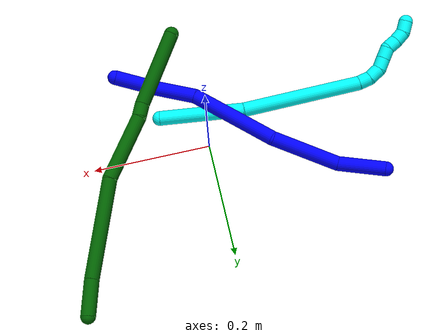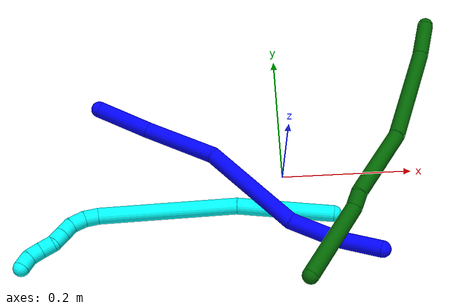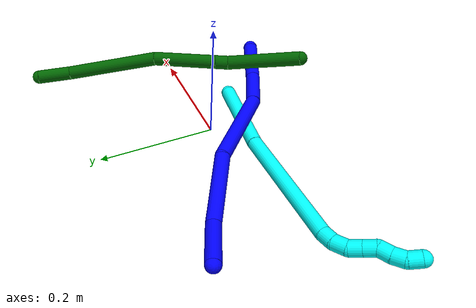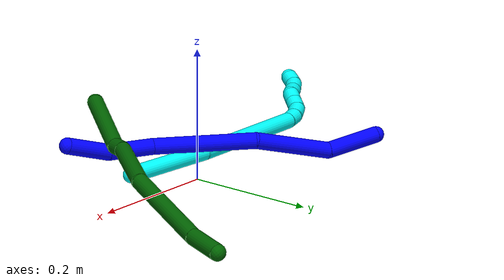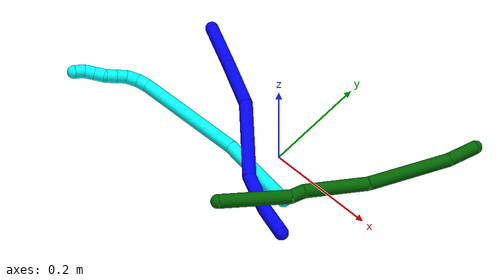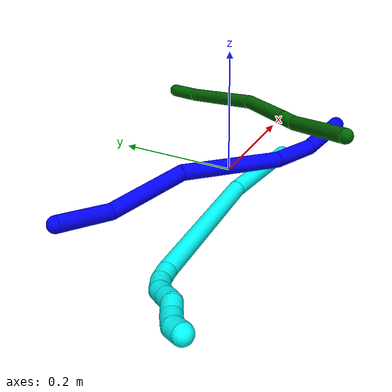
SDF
<sdf version="1.7">
 <world name="default">
  <model name="photoneo_s_sensor">
   <static>1</static>
   <pose>0 0 2 1.57079 1.57079 3.14159</pose>
   <link name="link">
    <inertial><mass>0.1</mass></inertial>
    <sensor name="sensor" type="depth">
     <update_rate>30</update_rate>
     <camera>
      <horizontal_fov>1.22</horizontal_fov>
      <image><width>1920</width><height>1200</height><format>B8G8R8</format></image>
      <clip><near>0.1</near><far>4</far></clip>
      <depth_camera><output>points</output></depth_camera>
     </camera>
     <plugin name="camera_plugin" filename="libgazebo_ros_depth_camera.so">
      <baseline>0.2</baseline>
      <alwaysOn>1</alwaysOn>
      <updateRate>0.0</updateRate>
      <cameraName>camera_ir</cameraName>
      <imageTopicName>/camera/color/image_raw</imageTopicName>
      <cameraInfoTopicName>/camera/color/camera_info</cameraInfoTopicName>
      <depthImageTopicName>/camera/depth/image_raw</depthImageTopicName>
      <depthImageCameraInfoTopicName>/camera/depth/camera_info</depthImageCameraInfoTopicName>
      <pointCloudTopicName>/camera/depth/points</pointCloudTopicName>
      <frameName>fr_optical</frameName>
      <pointCloudCutoff>0.1</pointCloudCutoff>
      <pointCloudCutoffMax>2.0</pointCloudCutoffMax>
      <distortionK1>0</distortionK1>
      <distortionK2>0</distortionK2>
      <distortionK3>0</distortionK3>
      <distortionT1>0</distortionT1>
      <distortionT2>0</distortionT2>
      <CxPrime>0</CxPrime>
      <Cx>0</Cx>
      <Cy>0</Cy>
      <focalLength>0</focalLength>
      <hackBaseline>0</hackBaseline>
     </plugin>
    </sensor>
   </link>
  </model>
  <model name="bin">
   <static>1</static>
   <link name="bottom">
    <collision name="collision-bottom">
     <pose>0 0 -0.01 0 -0 0</pose>
     <geometry><box><size>0.8 0.6 0.02</size></box></geometry>
     <surface>
      <friction><ode><mu>100</mu><mu2>100</mu2></ode></friction>
      <contact><collide_bitmask>65535</collide_bitmask></contact>
     </surface>
    </collision>
   </link>
   <link name="west_wall">
    <collision name="collision-west_wall">
     <pose>-0.41 0 0.1 0 -0 0</pose>
     <geometry><box><size>0.02 0.6 0.2</size></box></geometry>
     <surface>
      <friction><ode><mu>100</mu><mu2>100</mu2></ode></friction>
      <contact><collide_bitmask>65535</collide_bitmask></contact>
     </surface>
    </collision>
   </link>
   <link name="east_wall">
    <collision name="collision-east_wall">
     <pose>0.41 0 0.1 0 -0 0</pose>
     <geometry><box><size>0.02 0.6 0.2</size></box></geometry>
     <surface>
      <friction><ode><mu>100</mu><mu2>100</mu2></ode></friction>
      <contact><collide_bitmask>65535</collide_bitmask></contact>
     </surface>
    </collision>
   </link>
   <link name="south_wall">
    <collision name="collision-south_wall">
     <pose>0 -0.31 0.1 0 -0 0</pose>
     <geometry><box><size>0.8 0.02 0.2</size></box></geometry>
     <surface>
      <friction><ode><mu>100</mu><mu2>100</mu2></ode></friction>
      <contact><collide_bitmask>65535</collide_bitmask></contact>
     </surface>
    </collision>
   </link>
   <link name="north_wall">
    <collision name="collision-north_wall">
     <pose>0 0.31 0.1 0 -0 0</pose>
     <geometry><box><size>0.8 0.02 0.2</size></box></geometry>
     <surface>
      <friction><ode><mu>100</mu><mu2>100</mu2></ode></friction>
      <contact><collide_bitmask>65535</collide_bitmask></contact>
     </surface>
    </collision>
   </link>
  </model>
  <model name="1">
   <static>0</static>
   <link name="1">
    <collision name="collision-cylinder-e_1_1_4">
     <pose>-0.026079 0.016703 -0.017185 -2.37041 -0.827614 1.64946</pose>
     <geometry><cylinder><radius>0.0125</radius><length>0.070837</length></cylinder></geometry>
     <surface>
      <friction><ode><mu>1.16</mu><mu2>1.16</mu2><slip1>0</slip1><slip2>0</slip2></ode></friction>
      <contact><ode><kp>1e+06</kp><kd>1</kd><max_vel>0</max_vel><min_depth>0.001</min_depth></ode></contact>
     </surface>
    </collision>
    <visual name="visual-cylinder-e_1_1_4">
     <pose>-0.026079 0.016703 -0.017185 -2.37041 -0.827614 1.64946</pose>
     <geometry><cylinder><radius>0.0125</radius><length>0.070837</length></cylinder></geometry>
     <material><ambient>0 0 1 1</ambient></material>
    </visual>
    <collision name="collision-cylinder-e_2_4_5">
     <pose>-0.071968 0.048904 -0.059811 -2.59446 -0.586838 1.64469</pose>
     <geometry><cylinder><radius>0.0125</radius><length>0.071549</length></cylinder></geometry>
     <surface>
      <friction><ode><mu>1.16</mu><mu2>1.16</mu2><slip1>0</slip1><slip2>0</slip2></ode></friction>
      <contact><ode><kp>1e+06</kp><kd>1</kd><max_vel>0</max_vel><min_depth>0.001</min_depth></ode></contact>
     </surface>
    </collision>
    <visual name="visual-cylinder-e_2_4_5">
     <pose>-0.071968 0.048904 -0.059811 -2.59446 -0.586838 1.64469</pose>
     <geometry><cylinder><radius>0.0125</radius><length>0.071549</length></cylinder></geometry>
     <material><ambient>0 0 1 1</ambient></material>
    </visual>
    <collision name="collision-cylinder-e_3_5_6">
     <pose>-0.136612 0.07338 -0.14793 -2.99932 -0.616133 2.70098</pose>
     <geometry><cylinder><radius>0.0125</radius><length>0.155167</length></cylinder></geometry>
     <surface>
      <friction><ode><mu>1.16</mu><mu2>1.16</mu2><slip1>0</slip1><slip2>0</slip2></ode></friction>
      <contact><ode><kp>1e+06</kp><kd>1</kd><max_vel>0</max_vel><min_depth>0.001</min_depth></ode></contact>
     </surface>
    </collision>
    <visual name="visual-cylinder-e_3_5_6">
     <pose>-0.136612 0.07338 -0.14793 -2.99932 -0.616133 2.70098</pose>
     <geometry><cylinder><radius>0.0125</radius><length>0.155167</length></cylinder></geometry>
     <material><ambient>0 0 1 1</ambient></material>
    </visual>
    <collision name="collision-cylinder-e_4_6_7">
     <pose>-0.225685 0.10287 -0.245341 -2.60815 -0.83149 2.03319</pose>
     <geometry><cylinder><radius>0.0125</radius><length>0.119737</length></cylinder></geometry>
     <surface>
      <friction><ode><mu>1.16</mu><mu2>1.16</mu2><slip1>0</slip1><slip2>0</slip2></ode></friction>
      <contact><ode><kp>1e+06</kp><kd>1</kd><max_vel>0</max_vel><min_depth>0.001</min_depth></ode></contact>
     </surface>
    </collision>
    <visual name="visual-cylinder-e_4_6_7">
     <pose>-0.225685 0.10287 -0.245341 -2.60815 -0.83149 2.03319</pose>
     <geometry><cylinder><radius>0.0125</radius><length>0.119737</length></cylinder></geometry>
     <material><ambient>0 0 1 1</ambient></material>
    </visual>
    <collision name="collision-cylinder-e_5_7_2">
     <pose>-0.286544 0.142146 -0.312967 -2.62319 -0.413563 1.33862</pose>
     <geometry><cylinder><radius>0.0125</radius><length>0.082709</length></cylinder></geometry>
     <surface>
      <friction><ode><mu>1.16</mu><mu2>1.16</mu2><slip1>0</slip1><slip2>0</slip2></ode></friction>
      <contact><ode><kp>1e+06</kp><kd>1</kd><max_vel>0</max_vel><min_depth>0.001</min_depth></ode></contact>
     </surface>
    </collision>
    <visual name="visual-cylinder-e_5_7_2">
     <pose>-0.286544 0.142146 -0.312967 -2.62319 -0.413563 1.33862</pose>
     <geometry><cylinder><radius>0.0125</radius><length>0.082709</length></cylinder></geometry>
     <material><ambient>0 0 1 1</ambient></material>
    </visual>
    <collision name="collision-sphere-2">
     <pose>-0.303163 0.160909 -0.34586 0 -0 0</pose>
     <geometry><sphere><radius>0.0125</radius></sphere></geometry>
     <surface>
      <friction><ode><mu>1.16</mu><mu2>1.16</mu2><slip1>0</slip1><slip2>0</slip2></ode></friction>
      <contact><ode><kp>1e+06</kp><kd>1</kd><max_vel>0</max_vel><min_depth>0.001</min_depth></ode></contact>
     </surface>
    </collision>
    <visual name="visual-sphere-2">
     <pose>-0.303163 0.160909 -0.34586 0 -0 0</pose>
     <geometry><sphere><radius>0.0125</radius></sphere></geometry>
     <material><ambient>0 0 1 1</ambient></material>
    </visual>
    <collision name="collision-sphere-7">
     <pose>-0.269924 0.123382 -0.280074 0 -0 0</pose>
     <geometry><sphere><radius>0.0125</radius></sphere></geometry>
     <surface>
      <friction><ode><mu>1.16</mu><mu2>1.16</mu2><slip1>0</slip1><slip2>0</slip2></ode></friction>
      <contact><ode><kp>1e+06</kp><kd>1</kd><max_vel>0</max_vel><min_depth>0.001</min_depth></ode></contact>
     </surface>
    </collision>
    <visual name="visual-sphere-7">
     <pose>-0.269924 0.123382 -0.280074 0 -0 0</pose>
     <geometry><sphere><radius>0.0125</radius></sphere></geometry>
     <material><ambient>0 0 1 1</ambient></material>
    </visual>
    <collision name="collision-sphere-6">
     <pose>-0.181446 0.082358 -0.210607 0 -0 0</pose>
     <geometry><sphere><radius>0.0125</radius></sphere></geometry>
     <surface>
      <friction><ode><mu>1.16</mu><mu2>1.16</mu2><slip1>0</slip1><slip2>0</slip2></ode></friction>
      <contact><ode><kp>1e+06</kp><kd>1</kd><max_vel>0</max_vel><min_depth>0.001</min_depth></ode></contact>
     </surface>
    </collision>
    <visual name="visual-sphere-6">
     <pose>-0.181446 0.082358 -0.210607 0 -0 0</pose>
     <geometry><sphere><radius>0.0125</radius></sphere></geometry>
     <material><ambient>0 0 1 1</ambient></material>
    </visual>
    <collision name="collision-sphere-5">
     <pose>-0.091778 0.064402 -0.085252 0 -0 0</pose>
     <geometry><sphere><radius>0.0125</radius></sphere></geometry>
     <surface>
      <friction><ode><mu>1.16</mu><mu2>1.16</mu2><slip1>0</slip1><slip2>0</slip2></ode></friction>
      <contact><ode><kp>1e+06</kp><kd>1</kd><max_vel>0</max_vel><min_depth>0.001</min_depth></ode></contact>
     </surface>
    </collision>
    <visual name="visual-sphere-5">
     <pose>-0.091778 0.064402 -0.085252 0 -0 0</pose>
     <geometry><sphere><radius>0.0125</radius></sphere></geometry>
     <material><ambient>0 0 1 1</ambient></material>
    </visual>
    <collision name="collision-sphere-1">
     <geometry><sphere><radius>0.0125</radius></sphere></geometry>
     <surface>
      <friction><ode><mu>1.16</mu><mu2>1.16</mu2><slip1>0</slip1><slip2>0</slip2></ode></friction>
      <contact><ode><kp>1e+06</kp><kd>1</kd><max_vel>0</max_vel><min_depth>0.001</min_depth></ode></contact>
     </surface>
    </collision>
    <visual name="visual-sphere-1">
     <geometry><sphere><radius>0.0125</radius></sphere></geometry>
     <material><ambient>0 0 1 1</ambient></material>
    </visual>
    <collision name="collision-sphere-4">
     <pose>-0.052158 0.033407 -0.03437 0 -0 0</pose>
     <geometry><sphere><radius>0.0125</radius></sphere></geometry>
     <surface>
      <friction><ode><mu>1.16</mu><mu2>1.16</mu2><slip1>0</slip1><slip2>0</slip2></ode></friction>
      <contact><ode><kp>1e+06</kp><kd>1</kd><max_vel>0</max_vel><min_depth>0.001</min_depth></ode></contact>
     </surface>
    </collision>
    <visual name="visual-sphere-4">
     <pose>-0.052158 0.033407 -0.03437 0 -0 0</pose>
     <geometry><sphere><radius>0.0125</radius></sphere></geometry>
     <material><ambient>0 0 1 1</ambient></material>
    </visual>
    <inertial>
     <pose>-0.157834 0.080285 -0.167425 0 -0 0</pose>
     <mass>0.5</mass>
     <inertia><ixx>-2e-06</ixx><ixy>0</ixy><ixz>0</ixz><iyy>0.000738</iyy><iyz>0</iyz><izz>0.000188</izz></inertia>
    </inertial>
   </link>
   <pose>0.132368 -0.138802 0.056221 3.12278 -0.922773 -0.882583</pose>
  </model>
  <model name="3">
   <static>0</static>
   <link name="3">
    <collision name="collision-cylinder-e_1_1_4">
     <pose>-0.057995 0.01391 0.042408 -0.31694 -0.914892 0.157017</pose>
     <geometry><cylinder><radius>0.0125</radius><length>0.14636</length></cylinder></geometry>
     <surface>
      <friction><ode><mu>1.16</mu><mu2>1.16</mu2><slip1>0</slip1><slip2>0</slip2></ode></friction>
      <contact><ode><kp>1e+06</kp><kd>1</kd><max_vel>0</max_vel><min_depth>0.001</min_depth></ode></contact>
     </surface>
    </collision>
    <visual name="visual-cylinder-e_1_1_4">
     <pose>-0.057995 0.01391 0.042408 -0.31694 -0.914892 0.157017</pose>
     <geometry><cylinder><radius>0.0125</radius><length>0.14636</length></cylinder></geometry>
     <material><ambient>0.003922 1 0.996078 1</ambient></material>
    </visual>
    <collision name="collision-cylinder-e_2_4_5">
     <pose>-0.192415 0.036933 0.155402 -0.12841 -0.820971 0.055947</pose>
     <geometry><cylinder><radius>0.0125</radius><length>0.208865</length></cylinder></geometry>
     <surface>
      <friction><ode><mu>1.16</mu><mu2>1.16</mu2><slip1>0</slip1><slip2>0</slip2></ode></friction>
      <contact><ode><kp>1e+06</kp><kd>1</kd><max_vel>0</max_vel><min_depth>0.001</min_depth></ode></contact>
     </surface>
    </collision>
    <visual name="visual-cylinder-e_2_4_5">
     <pose>-0.192415 0.036933 0.155402 -0.12841 -0.820971 0.055947</pose>
     <geometry><cylinder><radius>0.0125</radius><length>0.208865</length></cylinder></geometry>
     <material><ambient>0.003922 1 0.996078 1</ambient></material>
    </visual>
    <collision name="collision-cylinder-e_3_5_6">
     <pose>-0.274986 0.046883 0.234509 -0.09769 -0.622638 0.031457</pose>
     <geometry><cylinder><radius>0.0125</radius><length>0.02108</length></cylinder></geometry>
     <surface>
      <friction><ode><mu>1.16</mu><mu2>1.16</mu2><slip1>0</slip1><slip2>0</slip2></ode></friction>
      <contact><ode><kp>1e+06</kp><kd>1</kd><max_vel>0</max_vel><min_depth>0.001</min_depth></ode></contact>
     </surface>
    </collision>
    <visual name="visual-cylinder-e_3_5_6">
     <pose>-0.274986 0.046883 0.234509 -0.09769 -0.622638 0.031457</pose>
     <geometry><cylinder><radius>0.0125</radius><length>0.02108</length></cylinder></geometry>
     <material><ambient>0.003922 1 0.996078 1</ambient></material>
    </visual>
    <collision name="collision-cylinder-e_4_6_7">
     <pose>-0.284782 0.047731 0.253936 -0.001228 -0.32289 0.0002</pose>
     <geometry><cylinder><radius>0.0125</radius><length>0.023</length></cylinder></geometry>
     <surface>
      <friction><ode><mu>1.16</mu><mu2>1.16</mu2><slip1>0</slip1><slip2>0</slip2></ode></friction>
      <contact><ode><kp>1e+06</kp><kd>1</kd><max_vel>0</max_vel><min_depth>0.001</min_depth></ode></contact>
     </surface>
    </collision>
    <visual name="visual-cylinder-e_4_6_7">
     <pose>-0.284782 0.047731 0.253936 -0.001228 -0.32289 0.0002</pose>
     <geometry><cylinder><radius>0.0125</radius><length>0.023</length></cylinder></geometry>
     <material><ambient>0.003922 1 0.996078 1</ambient></material>
    </visual>
    <collision name="collision-cylinder-e_5_7_8">
     <pose>-0.287299 0.046688 0.274817 0.105571 0.112354 0.005942</pose>
     <geometry><cylinder><radius>0.0125</radius><length>0.020189</length></cylinder></geometry>
     <surface>
      <friction><ode><mu>1.16</mu><mu2>1.16</mu2><slip1>0</slip1><slip2>0</slip2></ode></friction>
      <contact><ode><kp>1e+06</kp><kd>1</kd><max_vel>0</max_vel><min_depth>0.001</min_depth></ode></contact>
     </surface>
    </collision>
    <visual name="visual-cylinder-e_5_7_8">
     <pose>-0.287299 0.046688 0.274817 0.105571 0.112354 0.005942</pose>
     <geometry><cylinder><radius>0.0125</radius><length>0.020189</length></cylinder></geometry>
     <material><ambient>0.003922 1 0.996078 1</ambient></material>
    </visual>
    <collision name="collision-cylinder-e_6_8_9">
     <pose>-0.285062 0.044846 0.294761 0.078519 0.110111 0.004329</pose>
     <geometry><cylinder><radius>0.0125</radius><length>0.02012</length></cylinder></geometry>
     <surface>
      <friction><ode><mu>1.16</mu><mu2>1.16</mu2><slip1>0</slip1><slip2>0</slip2></ode></friction>
      <contact><ode><kp>1e+06</kp><kd>1</kd><max_vel>0</max_vel><min_depth>0.001</min_depth></ode></contact>
     </surface>
    </collision>
    <visual name="visual-cylinder-e_6_8_9">
     <pose>-0.285062 0.044846 0.294761 0.078519 0.110111 0.004329</pose>
     <geometry><cylinder><radius>0.0125</radius><length>0.02012</length></cylinder></geometry>
     <material><ambient>0.003922 1 0.996078 1</ambient></material>
    </visual>
    <collision name="collision-cylinder-e_7_9_10">
     <pose>-0.287856 0.042668 0.313971 0.14974 -0.395236 -0.030036</pose>
     <geometry><cylinder><radius>0.0125</radius><length>0.020254</length></cylinder></geometry>
     <surface>
      <friction><ode><mu>1.16</mu><mu2>1.16</mu2><slip1>0</slip1><slip2>0</slip2></ode></friction>
      <contact><ode><kp>1e+06</kp><kd>1</kd><max_vel>0</max_vel><min_depth>0.001</min_depth></ode></contact>
     </surface>
    </collision>
    <visual name="visual-cylinder-e_7_9_10">
     <pose>-0.287856 0.042668 0.313971 0.14974 -0.395236 -0.030036</pose>
     <geometry><cylinder><radius>0.0125</radius><length>0.020254</length></cylinder></geometry>
     <material><ambient>0.003922 1 0.996078 1</ambient></material>
    </visual>
    <collision name="collision-cylinder-e_8_10_11">
     <pose>-0.29396 0.040699 0.332979 0.058711 -0.221693 -0.006537</pose>
     <geometry><cylinder><radius>0.0125</radius><length>0.020057</length></cylinder></geometry>
     <surface>
      <friction><ode><mu>1.16</mu><mu2>1.16</mu2><slip1>0</slip1><slip2>0</slip2></ode></friction>
      <contact><ode><kp>1e+06</kp><kd>1</kd><max_vel>0</max_vel><min_depth>0.001</min_depth></ode></contact>
     </surface>
    </collision>
    <visual name="visual-cylinder-e_8_10_11">
     <pose>-0.29396 0.040699 0.332979 0.058711 -0.221693 -0.006537</pose>
     <geometry><cylinder><radius>0.0125</radius><length>0.020057</length></cylinder></geometry>
     <material><ambient>0.003922 1 0.996078 1</ambient></material>
    </visual>
    <collision name="collision-cylinder-e_9_11_2">
     <pose>-0.293987 0.038487 0.352405 0.167991 0.21876 0.018492</pose>
     <geometry><cylinder><radius>0.0125</radius><length>0.020073</length></cylinder></geometry>
     <surface>
      <friction><ode><mu>1.16</mu><mu2>1.16</mu2><slip1>0</slip1><slip2>0</slip2></ode></friction>
      <contact><ode><kp>1e+06</kp><kd>1</kd><max_vel>0</max_vel><min_depth>0.001</min_depth></ode></contact>
     </surface>
    </collision>
    <visual name="visual-cylinder-e_9_11_2">
     <pose>-0.293987 0.038487 0.352405 0.167991 0.21876 0.018492</pose>
     <geometry><cylinder><radius>0.0125</radius><length>0.020073</length></cylinder></geometry>
     <material><ambient>0.003922 1 0.996078 1</ambient></material>
    </visual>
    <collision name="collision-sphere-2">
     <pose>-0.291809 0.036849 0.362064 0 -0 0</pose>
     <geometry><sphere><radius>0.0125</radius></sphere></geometry>
     <surface>
      <friction><ode><mu>1.16</mu><mu2>1.16</mu2><slip1>0</slip1><slip2>0</slip2></ode></friction>
      <contact><ode><kp>1e+06</kp><kd>1</kd><max_vel>0</max_vel><min_depth>0.001</min_depth></ode></contact>
     </surface>
    </collision>
    <visual name="visual-sphere-2">
     <pose>-0.291809 0.036849 0.362064 0 -0 0</pose>
     <geometry><sphere><radius>0.0125</radius></sphere></geometry>
     <material><ambient>0.003922 1 0.996078 1</ambient></material>
    </visual>
    <collision name="collision-sphere-11">
     <pose>-0.296165 0.040125 0.342745 0 -0 0</pose>
     <geometry><sphere><radius>0.0125</radius></sphere></geometry>
     <surface>
      <friction><ode><mu>1.16</mu><mu2>1.16</mu2><slip1>0</slip1><slip2>0</slip2></ode></friction>
      <contact><ode><kp>1e+06</kp><kd>1</kd><max_vel>0</max_vel><min_depth>0.001</min_depth></ode></contact>
     </surface>
    </collision>
    <visual name="visual-sphere-11">
     <pose>-0.296165 0.040125 0.342745 0 -0 0</pose>
     <geometry><sphere><radius>0.0125</radius></sphere></geometry>
     <material><ambient>0.003922 1 0.996078 1</ambient></material>
    </visual>
    <collision name="collision-sphere-10">
     <pose>-0.291755 0.041273 0.323212 0 -0 0</pose>
     <geometry><sphere><radius>0.0125</radius></sphere></geometry>
     <surface>
      <friction><ode><mu>1.16</mu><mu2>1.16</mu2><slip1>0</slip1><slip2>0</slip2></ode></friction>
      <contact><ode><kp>1e+06</kp><kd>1</kd><max_vel>0</max_vel><min_depth>0.001</min_depth></ode></contact>
     </surface>
    </collision>
    <visual name="visual-sphere-10">
     <pose>-0.291755 0.041273 0.323212 0 -0 0</pose>
     <geometry><sphere><radius>0.0125</radius></sphere></geometry>
     <material><ambient>0.003922 1 0.996078 1</ambient></material>
    </visual>
    <collision name="collision-sphere-9">
     <pose>-0.283957 0.044062 0.304729 0 -0 0</pose>
     <geometry><sphere><radius>0.0125</radius></sphere></geometry>
     <surface>
      <friction><ode><mu>1.16</mu><mu2>1.16</mu2><slip1>0</slip1><slip2>0</slip2></ode></friction>
      <contact><ode><kp>1e+06</kp><kd>1</kd><max_vel>0</max_vel><min_depth>0.001</min_depth></ode></contact>
     </surface>
    </collision>
    <visual name="visual-sphere-9">
     <pose>-0.283957 0.044062 0.304729 0 -0 0</pose>
     <geometry><sphere><radius>0.0125</radius></sphere></geometry>
     <material><ambient>0.003922 1 0.996078 1</ambient></material>
    </visual>
    <collision name="collision-sphere-4">
     <pose>-0.11599 0.027819 0.084816 0 -0 0</pose>
     <geometry><sphere><radius>0.0125</radius></sphere></geometry>
     <surface>
      <friction><ode><mu>1.16</mu><mu2>1.16</mu2><slip1>0</slip1><slip2>0</slip2></ode></friction>
      <contact><ode><kp>1e+06</kp><kd>1</kd><max_vel>0</max_vel><min_depth>0.001</min_depth></ode></contact>
     </surface>
    </collision>
    <visual name="visual-sphere-4">
     <pose>-0.11599 0.027819 0.084816 0 -0 0</pose>
     <geometry><sphere><radius>0.0125</radius></sphere></geometry>
     <material><ambient>0.003922 1 0.996078 1</ambient></material>
    </visual>
    <collision name="collision-sphere-1">
     <geometry><sphere><radius>0.0125</radius></sphere></geometry>
     <surface>
      <friction><ode><mu>1.16</mu><mu2>1.16</mu2><slip1>0</slip1><slip2>0</slip2></ode></friction>
      <contact><ode><kp>1e+06</kp><kd>1</kd><max_vel>0</max_vel><min_depth>0.001</min_depth></ode></contact>
     </surface>
    </collision>
    <visual name="visual-sphere-1">
     <geometry><sphere><radius>0.0125</radius></sphere></geometry>
     <material><ambient>0.003922 1 0.996078 1</ambient></material>
    </visual>
    <collision name="collision-sphere-8">
     <pose>-0.286167 0.04563 0.284792 0 -0 0</pose>
     <geometry><sphere><radius>0.0125</radius></sphere></geometry>
     <surface>
      <friction><ode><mu>1.16</mu><mu2>1.16</mu2><slip1>0</slip1><slip2>0</slip2></ode></friction>
      <contact><ode><kp>1e+06</kp><kd>1</kd><max_vel>0</max_vel><min_depth>0.001</min_depth></ode></contact>
     </surface>
    </collision>
    <visual name="visual-sphere-8">
     <pose>-0.286167 0.04563 0.284792 0 -0 0</pose>
     <geometry><sphere><radius>0.0125</radius></sphere></geometry>
     <material><ambient>0.003922 1 0.996078 1</ambient></material>
    </visual>
    <collision name="collision-sphere-5">
     <pose>-0.268839 0.046048 0.225988 0 -0 0</pose>
     <geometry><sphere><radius>0.0125</radius></sphere></geometry>
     <surface>
      <friction><ode><mu>1.16</mu><mu2>1.16</mu2><slip1>0</slip1><slip2>0</slip2></ode></friction>
      <contact><ode><kp>1e+06</kp><kd>1</kd><max_vel>0</max_vel><min_depth>0.001</min_depth></ode></contact>
     </surface>
    </collision>
    <visual name="visual-sphere-5">
     <pose>-0.268839 0.046048 0.225988 0 -0 0</pose>
     <geometry><sphere><radius>0.0125</radius></sphere></geometry>
     <material><ambient>0.003922 1 0.996078 1</ambient></material>
    </visual>
    <collision name="collision-sphere-6">
     <pose>-0.281133 0.047718 0.24303 0 -0 0</pose>
     <geometry><sphere><radius>0.0125</radius></sphere></geometry>
     <surface>
      <friction><ode><mu>1.16</mu><mu2>1.16</mu2><slip1>0</slip1><slip2>0</slip2></ode></friction>
      <contact><ode><kp>1e+06</kp><kd>1</kd><max_vel>0</max_vel><min_depth>0.001</min_depth></ode></contact>
     </surface>
    </collision>
    <visual name="visual-sphere-6">
     <pose>-0.281133 0.047718 0.24303 0 -0 0</pose>
     <geometry><sphere><radius>0.0125</radius></sphere></geometry>
     <material><ambient>0.003922 1 0.996078 1</ambient></material>
    </visual>
    <collision name="collision-sphere-7">
     <pose>-0.288431 0.047745 0.264842 0 -0 0</pose>
     <geometry><sphere><radius>0.0125</radius></sphere></geometry>
     <surface>
      <friction><ode><mu>1.16</mu><mu2>1.16</mu2><slip1>0</slip1><slip2>0</slip2></ode></friction>
      <contact><ode><kp>1e+06</kp><kd>1</kd><max_vel>0</max_vel><min_depth>0.001</min_depth></ode></contact>
     </surface>
    </collision>
    <visual name="visual-sphere-7">
     <pose>-0.288431 0.047745 0.264842 0 -0 0</pose>
     <geometry><sphere><radius>0.0125</radius></sphere></geometry>
     <material><ambient>0.003922 1 0.996078 1</ambient></material>
    </visual>
    <inertial>
     <pose>-0.180374 0.032268 0.162079 0 -0 0</pose>
     <mass>0.5</mass>
     <inertia>
      <ixx>0.000725</ixx>
      <ixy>0</ixy>
      <ixz>0</ixz>
      <iyy>0.001093</iyy>
      <iyz>0</iyz>
      <izz>0.000686</izz>
     </inertia>
    </inertial>
   </link>
   <pose>0.072518 -0.066677 0.011493 1.17518 -0.446797 -0.608859</pose>
  </model>
  <model name="6">
   <static>0</static>
   <link name="6">
    <collision name="collision-cylinder-e_1_1_4">
     <pose>0.014266 -0.025881 -0.006541 1.81835 0.490795 0.622342</pose>
     <geometry><cylinder><radius>0.0125</radius><length>0.060536</length></cylinder></geometry>
     <surface>
      <friction><ode><mu>1.16</mu><mu2>1.16</mu2><slip1>0</slip1><slip2>0</slip2></ode></friction>
      <contact><ode><kp>1e+06</kp><kd>1</kd><max_vel>0</max_vel><min_depth>0.001</min_depth></ode></contact>
     </surface>
    </collision>
    <visual name="visual-cylinder-e_1_1_4">
     <pose>0.014266 -0.025881 -0.006541 1.81835 0.490795 0.622342</pose>
     <geometry><cylinder><radius>0.0125</radius><length>0.060536</length></cylinder></geometry>
     <material><ambient>0 0.392157 0.003922 1</ambient></material>
    </visual>
    <collision name="collision-cylinder-e_2_4_5">
     <pose>0.070129 -0.123955 -0.019468 1.65902 0.521051 0.566739</pose>
     <geometry><cylinder><radius>0.0125</radius><length>0.167127</length></cylinder></geometry>
     <surface>
      <friction><ode><mu>1.16</mu><mu2>1.16</mu2><slip1>0</slip1><slip2>0</slip2></ode></friction>
      <contact><ode><kp>1e+06</kp><kd>1</kd><max_vel>0</max_vel><min_depth>0.001</min_depth></ode></contact>
     </surface>
    </collision>
    <visual name="visual-cylinder-e_2_4_5">
     <pose>0.070129 -0.123955 -0.019468 1.65902 0.521051 0.566739</pose>
     <geometry><cylinder><radius>0.0125</radius><length>0.167127</length></cylinder></geometry>
     <material><ambient>0 0.392157 0.003922 1</ambient></material>
    </visual>
    <collision name="collision-cylinder-e_3_5_6">
     <pose>0.128513 -0.251147 -0.022365 1.50744 0.295673 0.277749</pose>
     <geometry><cylinder><radius>0.0125</radius><length>0.115219</length></cylinder></geometry>
     <surface>
      <friction><ode><mu>1.16</mu><mu2>1.16</mu2><slip1>0</slip1><slip2>0</slip2></ode></friction>
      <contact><ode><kp>1e+06</kp><kd>1</kd><max_vel>0</max_vel><min_depth>0.001</min_depth></ode></contact>
     </surface>
    </collision>
    <visual name="visual-cylinder-e_3_5_6">
     <pose>0.128513 -0.251147 -0.022365 1.50744 0.295673 0.277749</pose>
     <geometry><cylinder><radius>0.0125</radius><length>0.115219</length></cylinder></geometry>
     <material><ambient>0 0.392157 0.003922 1</ambient></material>
    </visual>
    <collision name="collision-cylinder-e_4_6_7">
     <pose>0.148986 -0.317744 -0.021579 1.79979 0.300194 0.376562</pose>
     <geometry><cylinder><radius>0.0125</radius><length>0.024933</length></cylinder></geometry>
     <surface>
      <friction><ode><mu>1.16</mu><mu2>1.16</mu2><slip1>0</slip1><slip2>0</slip2></ode></friction>
      <contact><ode><kp>1e+06</kp><kd>1</kd><max_vel>0</max_vel><min_depth>0.001</min_depth></ode></contact>
     </surface>
    </collision>
    <visual name="visual-cylinder-e_4_6_7">
     <pose>0.148986 -0.317744 -0.021579 1.79979 0.300194 0.376562</pose>
     <geometry><cylinder><radius>0.0125</radius><length>0.024933</length></cylinder></geometry>
     <material><ambient>0 0.392157 0.003922 1</ambient></material>
    </visual>
    <collision name="collision-cylinder-e_5_7_2">
     <pose>0.17865 -0.389617 -0.016516 1.44265 0.403948 0.35633</pose>
     <geometry><cylinder><radius>0.0125</radius><length>0.132184</length></cylinder></geometry>
     <surface>
      <friction><ode><mu>1.16</mu><mu2>1.16</mu2><slip1>0</slip1><slip2>0</slip2></ode></friction>
      <contact><ode><kp>1e+06</kp><kd>1</kd><max_vel>0</max_vel><min_depth>0.001</min_depth></ode></contact>
     </surface>
    </collision>
    <visual name="visual-cylinder-e_5_7_2">
     <pose>0.17865 -0.389617 -0.016516 1.44265 0.403948 0.35633</pose>
     <geometry><cylinder><radius>0.0125</radius><length>0.132184</length></cylinder></geometry>
     <material><ambient>0 0.392157 0.003922 1</ambient></material>
    </visual>
    <collision name="collision-sphere-2">
     <pose>0.204628 -0.449891 -0.008749 0 -0 0</pose>
     <geometry><sphere><radius>0.0125</radius></sphere></geometry>
     <surface>
      <friction><ode><mu>1.16</mu><mu2>1.16</mu2><slip1>0</slip1><slip2>0</slip2></ode></friction>
      <contact><ode><kp>1e+06</kp><kd>1</kd><max_vel>0</max_vel><min_depth>0.001</min_depth></ode></contact>
     </surface>
    </collision>
    <visual name="visual-sphere-2">
     <pose>0.204628 -0.449891 -0.008749 0 -0 0</pose>
     <geometry><sphere><radius>0.0125</radius></sphere></geometry>
     <material><ambient>0 0.392157 0.003922 1</ambient></material>
    </visual>
    <collision name="collision-sphere-7">
     <pose>0.152673 -0.329342 -0.024282 0 -0 0</pose>
     <geometry><sphere><radius>0.0125</radius></sphere></geometry>
     <surface>
      <friction><ode><mu>1.16</mu><mu2>1.16</mu2><slip1>0</slip1><slip2>0</slip2></ode></friction>
      <contact><ode><kp>1e+06</kp><kd>1</kd><max_vel>0</max_vel><min_depth>0.001</min_depth></ode></contact>
     </surface>
    </collision>
    <visual name="visual-sphere-7">
     <pose>0.152673 -0.329342 -0.024282 0 -0 0</pose>
     <geometry><sphere><radius>0.0125</radius></sphere></geometry>
     <material><ambient>0 0.392157 0.003922 1</ambient></material>
    </visual>
    <collision name="collision-sphere-6">
     <pose>0.1453 -0.306146 -0.018875 0 -0 0</pose>
     <geometry><sphere><radius>0.0125</radius></sphere></geometry>
     <surface>
      <friction><ode><mu>1.16</mu><mu2>1.16</mu2><slip1>0</slip1><slip2>0</slip2></ode></friction>
      <contact><ode><kp>1e+06</kp><kd>1</kd><max_vel>0</max_vel><min_depth>0.001</min_depth></ode></contact>
     </surface>
    </collision>
    <visual name="visual-sphere-6">
     <pose>0.1453 -0.306146 -0.018875 0 -0 0</pose>
     <geometry><sphere><radius>0.0125</radius></sphere></geometry>
     <material><ambient>0 0.392157 0.003922 1</ambient></material>
    </visual>
    <collision name="collision-sphere-5">
     <pose>0.111727 -0.196148 -0.025854 0 -0 0</pose>
     <geometry><sphere><radius>0.0125</radius></sphere></geometry>
     <surface>
      <friction><ode><mu>1.16</mu><mu2>1.16</mu2><slip1>0</slip1><slip2>0</slip2></ode></friction>
      <contact><ode><kp>1e+06</kp><kd>1</kd><max_vel>0</max_vel><min_depth>0.001</min_depth></ode></contact>
     </surface>
    </collision>
    <visual name="visual-sphere-5">
     <pose>0.111727 -0.196148 -0.025854 0 -0 0</pose>
     <geometry><sphere><radius>0.0125</radius></sphere></geometry>
     <material><ambient>0 0.392157 0.003922 1</ambient></material>
    </visual>
    <collision name="collision-sphere-1">
     <geometry><sphere><radius>0.0125</radius></sphere></geometry>
     <surface>
      <friction><ode><mu>1.16</mu><mu2>1.16</mu2><slip1>0</slip1><slip2>0</slip2></ode></friction>
      <contact><ode><kp>1e+06</kp><kd>1</kd><max_vel>0</max_vel><min_depth>0.001</min_depth></ode></contact>
     </surface>
    </collision>
    <visual name="visual-sphere-1">
     <geometry><sphere><radius>0.0125</radius></sphere></geometry>
     <material><ambient>0 0.392157 0.003922 1</ambient></material>
    </visual>
    <collision name="collision-sphere-4">
     <pose>0.028532 -0.051762 -0.013083 0 -0 0</pose>
     <geometry><sphere><radius>0.0125</radius></sphere></geometry>
     <surface>
      <friction><ode><mu>1.16</mu><mu2>1.16</mu2><slip1>0</slip1><slip2>0</slip2></ode></friction>
      <contact><ode><kp>1e+06</kp><kd>1</kd><max_vel>0</max_vel><min_depth>0.001</min_depth></ode></contact>
     </surface>
    </collision>
    <visual name="visual-sphere-4">
     <pose>0.028532 -0.051762 -0.013083 0 -0 0</pose>
     <geometry><sphere><radius>0.0125</radius></sphere></geometry>
     <material><ambient>0 0.392157 0.003922 1</ambient></material>
    </visual>
    <inertial>
     <pose>0.109442 -0.221287 -0.017895 0 -0 0</pose>
     <mass>0.5</mass>
     <inertia>
      <ixx>0.000908</ixx>
      <ixy>0</ixy>
      <ixz>0</ixz>
      <iyy>0.000405</iyy>
      <iyz>0</iyz>
      <izz>0.000344</izz>
     </inertia>
    </inertial>
   </link>
   <pose>0.253657 0.249536 0.01286 0.283146 -0.897908 -0.988535</pose>
  </model>
 </world>
</sdf>
